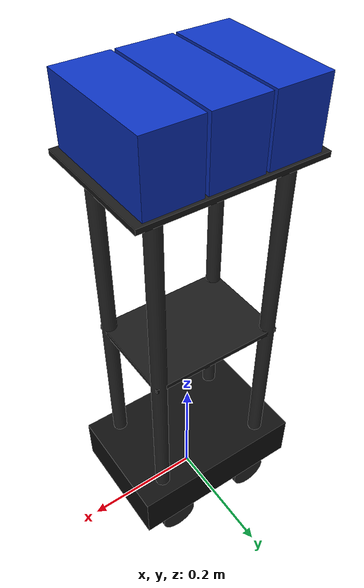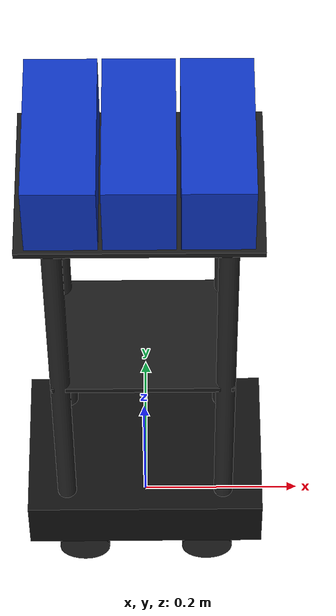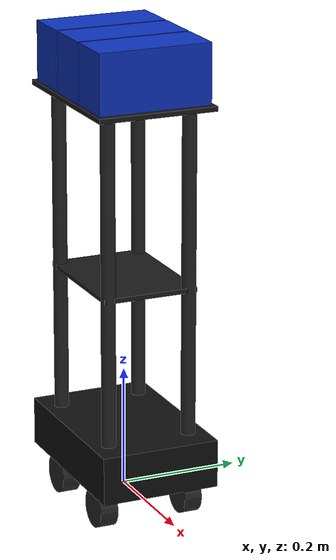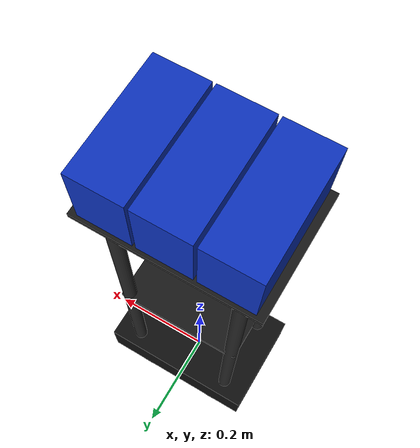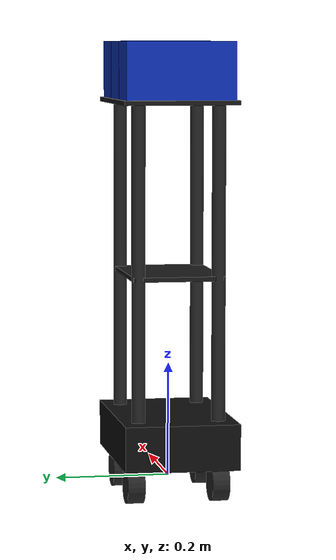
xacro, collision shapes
<?xml version="1.0"?>
<robot xmlns:xacro="http://www.ros.org/wiki/xacro" name="rosmaster_x3">

  <xacro:property name="M_PI" value="3.1415926535897931" />

  <xacro:include filename="$(find mechanum_description)/urdf/mech/rosmaster_x3_base.urdf.xacro"/>
  <xacro:include filename="$(find mechanum_description)/urdf/mech/mecanum_wheel.urdf.xacro"/>
  <xacro:include filename="$(find mechanum_description)/urdf/sensors/lidar.urdf.xacro"/>

  <xacro:rosmaster_x3_base />

  <xacro:mecanum_wheel side="front_left"  x_reflect="1"  y_reflect="1"/>
  <xacro:mecanum_wheel side="front_right" x_reflect="1"  y_reflect="-1"/>
  <xacro:mecanum_wheel side="back_left"   x_reflect="-1" y_reflect="1"/>
  <xacro:mecanum_wheel side="back_right"  x_reflect="-1" y_reflect="-1"/>

  <!-- LiDAR : à l'avant du châssis, centré, au-dessus du châssis
       z=0.15 > base_height=0.08 → lidar bien au-dessus, pas enfoncé -->
  <xacro:lidar_sensor
    parent="base_link"
    frame_id="laser_frame"
    xyz_offset="0.08 0.0 0.15"
    rpy_offset="0 0 0"
    mesh_xyz_offset="0 0 0"
    mesh_rpy_offset="${-M_PI/2} 0 0"
    topic_name="scan"
    visualize="false"/>

  <!-- Plugin joint_state_publisher Gazebo -->
  <gazebo>
    <plugin name="gazebo_ros_joint_state_publisher"
            filename="libgazebo_ros_joint_state_publisher.so">
      <update_rate>20</update_rate>
      <joint_name>front_left_wheel_joint</joint_name>
      <joint_name>front_right_wheel_joint</joint_name>
      <joint_name>back_left_wheel_joint</joint_name>
      <joint_name>back_right_wheel_joint</joint_name>
    </plugin>
  </gazebo>

  <!-- Plugin Planar Move omnidirectionnel -->
  <gazebo>
    <plugin name="planar_controller" filename="libgazebo_ros_planar_move.so">
      <ros><remapping>cmd_vel:=cmd_vel</remapping></ros>
      <update_rate>50</update_rate>
      <publish_rate>20</publish_rate>
      <publish_odom>true</publish_odom>
      <publish_odom_tf>false</publish_odom_tf>
      <odometry_frame>odom</odometry_frame>
      <robot_base_frame>base_footprint</robot_base_frame>
    </plugin>
  </gazebo>

</robot>

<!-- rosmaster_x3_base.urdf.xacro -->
<robot xmlns:xacro="http://www.ros.org/wiki/xacro">

  <!-- Roues -->
  <xacro:property name="wheel_radius"     value="0.0325" />
  <xacro:property name="wheel_width"      value="0.0304" />
  <xacro:property name="wheel_separation" value="0.169"  />
  <xacro:property name="wheel_xoff"       value="0.08"   />

  <!-- Châssis principal -->
  <xacro:property name="base_length"  value="0.300" />   <!-- X : avant/arrière -->
  <xacro:property name="base_width"   value="0.200" />   <!-- Y : gauche/droite (entre roues) -->
  <xacro:property name="base_height"  value="0.080" />   <!-- Z : hauteur châssis -->
  <xacro:property name="base_mass"    value="4.6"   />

  <!-- Mâts (4 mâts aux coins) -->
  <xacro:property name="pole_radius"  value="0.012" />
  <xacro:property name="pole_height"  value="0.55"  />   <!-- hauteur des mâts -->
  <xacro:property name="pole_mass"    value="0.12"  />
  <!-- Position des 4 mâts dans le châssis -->
  <xacro:property name="pole_x"       value="0.10"  />   <!-- avant/arrière des mâts -->
  <xacro:property name="pole_y"       value="0.07"  />   <!-- gauche/droite des mâts -->
  <xacro:property name="pole_z_center" value="${base_height + pole_height/2}" />

  <!-- Plaque intermédiaire noire -->
  <xacro:property name="mid_shelf_l"  value="0.22"  />
  <xacro:property name="mid_shelf_w"  value="0.16"  />
  <xacro:property name="mid_shelf_h"  value="0.008" />
  <xacro:property name="mid_shelf_z"  value="${base_height + pole_height * 0.45}" />

  <!-- Plateforme supérieure (base des bacs) -->
  <xacro:property name="top_shelf_l"  value="0.28"  />
  <xacro:property name="top_shelf_w"  value="0.20"  />
  <xacro:property name="top_shelf_h"  value="0.008" />
  <xacro:property name="top_shelf_z"  value="${base_height + pole_height}" />

  <!-- 3 bacs bleus -->
  <xacro:property name="bin_l"        value="0.082" />   <!-- largeur d'un bac -->
  <xacro:property name="bin_w"        value="0.19"  />
  <xacro:property name="bin_h"        value="0.10"  />
  <xacro:property name="bin_z"        value="${top_shelf_z + top_shelf_h/2 + bin_h/2}" />
  <xacro:property name="bin_mass"     value="0.15"  />

  <!-- Macros inertie -->
  <xacro:macro name="box_inertia" params="m l w h">
    <inertial>
      <mass value="${m}"/>
      <inertia ixx="${m*(w*w+h*h)/12}" ixy="0" ixz="0"
               iyy="${m*(l*l+h*h)/12}" iyz="0"
               izz="${m*(l*l+w*w)/12}"/>
    </inertial>
  </xacro:macro>

  <xacro:macro name="cyl_inertia" params="m r h">
    <inertial>
      <mass value="${m}"/>
      <inertia ixx="${m*(3*r*r+h*h)/12}" ixy="0" ixz="0"
               iyy="${m*(3*r*r+h*h)/12}" iyz="0"
               izz="${m*r*r/2}"/>
    </inertial>
  </xacro:macro>

  <!-- ══ MACRO MÂT (réutilisée 4 fois) ══ -->
  <xacro:macro name="pole" params="name px py">
    <link name="pole_${name}_link">
      <visual>
        <origin xyz="0 0 0" rpy="0 0 0"/>
        <geometry>
          <cylinder radius="${pole_radius}" length="${pole_height}"/>
        </geometry>
        <material name="mat_pole">
          <color rgba="0.15 0.15 0.15 1.0"/>
        </material>
      </visual>
      <collision>
        <geometry>
          <cylinder radius="${pole_radius}" length="${pole_height}"/>
        </geometry>
      </collision>
      <xacro:cyl_inertia m="${pole_mass}" r="${pole_radius}" h="${pole_height}"/>
    </link>
    <joint name="pole_${name}_joint" type="fixed">
      <parent link="base_link"/>
      <child  link="pole_${name}_link"/>
      <origin xyz="${px} ${py} ${pole_z_center}" rpy="0 0 0"/>
    </joint>
    <gazebo reference="pole_${name}_link">
      <material>Gazebo/DarkGray</material>
    </gazebo>
  </xacro:macro>

  <!-- ══ MACRO BAC (réutilisée 3 fois) ══ -->
  <xacro:macro name="bin" params="name bx">
    <link name="bin_${name}_link">
      <visual>
        <origin xyz="0 0 0" rpy="0 0 0"/>
        <geometry>
          <box size="${bin_l} ${bin_w} ${bin_h}"/>
        </geometry>
        <material name="mat_blue">
          <color rgba="0.05 0.20 0.75 1.0"/>
        </material>
      </visual>
      <collision>
        <geometry><box size="${bin_l} ${bin_w} ${bin_h}"/></geometry>
      </collision>
      <xacro:box_inertia m="${bin_mass}" l="${bin_l}" w="${bin_w}" h="${bin_h}"/>
    </link>
    <joint name="bin_${name}_joint" type="fixed">
      <parent link="base_link"/>
      <child  link="bin_${name}_link"/>
      <origin xyz="${bx} 0 ${bin_z}" rpy="0 0 0"/>
    </joint>
    <gazebo reference="bin_${name}_link">
      <material>Gazebo/Blue</material>
    </gazebo>
  </xacro:macro>

  <!-- ══════════════════════════════════════════════════════════
       MACRO PRINCIPALE
  ══════════════════════════════════════════════════════════ -->
  <xacro:macro name="rosmaster_x3_base">

    <!-- ── base_footprint ── -->
    <link name="base_footprint"/>
    <joint name="base_joint" type="fixed">
      <parent link="base_footprint"/>
      <child  link="base_link"/>
      <origin xyz="0 0 ${wheel_radius}" rpy="0 0 0"/>
    </joint>

    <!-- ── Châssis principal (boîte noire) ── -->
    <link name="base_link">
      <visual>
        <origin xyz="0 0 ${base_height/2}" rpy="0 0 0"/>
        <geometry>
          <box size="${base_length} ${base_width} ${base_height}"/>
        </geometry>
        <material name="mat_chassis">
          <color rgba="0.06 0.06 0.06 1.0"/>
        </material>
      </visual>
      <collision>
        <origin xyz="0 0 ${base_height/2}" rpy="0 0 0"/>
        <geometry>
          <box size="${base_length} ${base_width} ${base_height}"/>
        </geometry>
      </collision>
      <xacro:box_inertia m="${base_mass}" l="${base_length}" w="${base_width}" h="${base_height}"/>
    </link>
    <gazebo reference="base_link">
      <material>Gazebo/Black</material>
    </gazebo>

    <!-- ── 4 Mâts noirs aux coins ── -->
    <xacro:pole name="fl" px=" ${pole_x}" py=" ${pole_y}"/>
    <xacro:pole name="fr" px=" ${pole_x}" py="-${pole_y}"/>
    <xacro:pole name="rl" px="-${pole_x}" py=" ${pole_y}"/>
    <xacro:pole name="rr" px="-${pole_x}" py="-${pole_y}"/>

    <!-- ── Plaque intermédiaire noire (mi-hauteur) ── -->
    <link name="mid_shelf_link">
      <visual>
        <origin xyz="0 0 0" rpy="0 0 0"/>
        <geometry>
          <box size="${mid_shelf_l} ${mid_shelf_w} ${mid_shelf_h}"/>
        </geometry>
        <material name="mat_shelf">
          <color rgba="0.10 0.10 0.10 1.0"/>
        </material>
      </visual>
      <collision>
        <geometry><box size="${mid_shelf_l} ${mid_shelf_w} ${mid_shelf_h}"/></geometry>
      </collision>
      <xacro:box_inertia m="0.2" l="${mid_shelf_l}" w="${mid_shelf_w}" h="${mid_shelf_h}"/>
    </link>
    <joint name="mid_shelf_joint" type="fixed">
      <parent link="base_link"/>
      <child  link="mid_shelf_link"/>
      <origin xyz="0 0 ${mid_shelf_z}" rpy="0 0 0"/>
    </joint>
    <gazebo reference="mid_shelf_link">
      <material>Gazebo/DarkGray</material>
    </gazebo>

    <!-- ── Plateforme supérieure (support des bacs) ── -->
    <link name="top_shelf_link">
      <visual>
        <origin xyz="0 0 0" rpy="0 0 0"/>
        <geometry>
          <box size="${top_shelf_l} ${top_shelf_w} ${top_shelf_h}"/>
        </geometry>
        <material name="mat_shelf">
          <color rgba="0.10 0.10 0.10 1.0"/>
        </material>
      </visual>
      <collision>
        <geometry><box size="${top_shelf_l} ${top_shelf_w} ${top_shelf_h}"/></geometry>
      </collision>
      <xacro:box_inertia m="0.25" l="${top_shelf_l}" w="${top_shelf_w}" h="${top_shelf_h}"/>
    </link>
    <joint name="top_shelf_joint" type="fixed">
      <parent link="base_link"/>
      <child  link="top_shelf_link"/>
      <origin xyz="0 0 ${top_shelf_z}" rpy="0 0 0"/>
    </joint>
    <gazebo reference="top_shelf_link">
      <material>Gazebo/Black</material>
    </gazebo>

    <!-- ── 3 Bacs bleus côte à côte ── -->
    <!-- bac gauche -->
    <xacro:bin name="left"   bx="-${bin_l + 0.005}"/>
    <!-- bac centre -->
    <xacro:bin name="center" bx="0"/>
    <!-- bac droit -->
    <xacro:bin name="right"  bx=" ${bin_l + 0.005}"/>

  </xacro:macro>
</robot>

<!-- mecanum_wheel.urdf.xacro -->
<robot xmlns:xacro="http://www.ros.org/wiki/xacro">

  <xacro:property name="wheel_radius"    value="0.0325" />
  <xacro:property name="wheel_separation" value="0.169" />
  <xacro:property name="wheel_width"     value="0.0304" />
  <xacro:property name="wheel_mass"      value="0.5"    />
  <xacro:property name="wheel_xoff"      value="0.08"   />
  <xacro:property name="wheel_yoff"      value="-0.01"  />

  <xacro:macro name="mecanum_wheel" params="side x_reflect y_reflect">

    <link name="${side}_wheel_link">
      <!-- CORRECTION : cylindre géométrique simple au lieu du mesh STL rosmaster_x3
           Couleur noir foncé pour les roues mecanum -->
      <visual>
        <origin xyz="0 0 0" rpy="${pi/2} 0 0"/>
        <geometry>
          <cylinder radius="${wheel_radius}" length="${wheel_width}"/>
        </geometry>
        <material name="mat_wheel">
          <color rgba="0.15 0.15 0.15 1.0"/>
        </material>
      </visual>
      <collision>
        <origin xyz="0 0 0" rpy="${pi/2} 0 0"/>
        <geometry>
          <cylinder radius="${wheel_radius}" length="${wheel_width}"/>
        </geometry>
      </collision>
      <inertial>
        <origin xyz="0 0 0" rpy="0 0 0"/>
        <mass value="${wheel_mass}"/>
        <inertia
          ixx="${(wheel_mass/12.0)*(3*wheel_radius*wheel_radius + wheel_width*wheel_width)}"
          ixy="0" ixz="0"
          iyy="${(wheel_mass/2.0)*(wheel_radius*wheel_radius)}"
          iyz="0"
          izz="${(wheel_mass/12.0)*(3*wheel_radius*wheel_radius + wheel_width*wheel_width)}"/>
      </inertial>
    </link>

    <joint name="${side}_wheel_joint" type="continuous">
      <axis xyz="0 1 0"/>
      <parent link="base_link"/>
      <child  link="${side}_wheel_link"/>
      <origin xyz="${x_reflect*wheel_xoff} ${y_reflect*(wheel_separation/2+wheel_yoff)} ${-wheel_radius}" rpy="0 0 0"/>
    </joint>

    <!-- Friction mecanum : mu1 fort (avance), mu2 faible (dérive latérale) -->
    <gazebo reference="${side}_wheel_link">
      <collision>
        <surface>
          <friction>
            <ode>
              <mu1>0.8</mu1>
              <mu2>0.2</mu2>
              <minDepth>0.001</minDepth>
              <fdir1>
                <xacro:if value="${side == 'front_left'}">1 -1 0</xacro:if>
                <xacro:if value="${side == 'back_left'}">1 1 0</xacro:if>
                <xacro:if value="${side == 'front_right'}">1 1 0</xacro:if>
                <xacro:if value="${side == 'back_right'}">1 -1 0</xacro:if>
              </fdir1>
            </ode>
          </friction>
        </surface>
      </collision>
      <visual>
        <material>
          <ambient>0.15 0.15 0.15 1.0</ambient>
          <diffuse>0.15 0.15 0.15 1.0</diffuse>
          <specular>0.1  0.1  0.1  1.0</specular>
        </material>
      </visual>
    </gazebo>

  </xacro:macro>
</robot>

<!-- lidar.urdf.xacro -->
<robot xmlns:xacro="http://www.ros.org/wiki/xacro">
  <xacro:property name="M_PI" value="3.1415926535897931" />

  <xacro:macro name="lidar_sensor" params="parent:='base_link' frame_id:='laser_frame'
    mesh_file:='file://$(find mechanum_description)/meshes/rplidar/rplidar_s2.stl'
    xyz_offset:='0 0 0.0825' rpy_offset:='0 0 0'
    mesh_xyz_offset:='0 0 0' mesh_rpy_offset:='${-M_PI/2} 0 0'
    mesh_scale:='0.001 0.001 0.001'
    collision_xyz_offset:='0 0 0' collision_rpy_offset:='0 0 0'
    inertial_xyz_offset:='0 0 0' inertial_rpy_offset:='0 0 0'
    lidar_width:=0.077 lidar_height:=0.0398 mass:=0.185
    material_name:='rplidar_black' material_color:='0.1 0.1 0.1 1'
    gazebo_material_ambient:='0.1 0.1 0.1 1'
    gazebo_material_diffuse:='0.1 0.1 0.1 1'
    gazebo_material_specular:='0.1 0.1 0.1 1'
    update_rate:=10 ray_count:=360
    min_angle:='-3.14159' max_angle:='3.14159'
    min_range:='0.12' max_range:='12.0' range_resolution:='0.01'
    topic_name:='scan' visualize:=false enable_collision:=false">

    <xacro:property name="radius"   value="${lidar_width/2}" />
    <xacro:property name="ixx_iyy" value="${(mass/12) * (3 * radius * radius + lidar_height * lidar_height)}" />
    <xacro:property name="izz"     value="${(mass/2)  * (radius * radius)}" />

    <link name="${frame_id}">
      <visual>
        <origin xyz="${mesh_xyz_offset}" rpy="${mesh_rpy_offset}"/>
        <geometry>
          <mesh filename="${mesh_file}" scale="${mesh_scale}"/>
        </geometry>
        <material name="${material_name}">
          <color rgba="${material_color}"/>
        </material>
      </visual>

      <xacro:if value="${enable_collision}">
        <collision>
          <origin xyz="${collision_xyz_offset}" rpy="${collision_rpy_offset}"/>
          <geometry>
            <cylinder radius="${lidar_width/2}" length="${lidar_height}"/>
          </geometry>
        </collision>
      </xacro:if>

      <inertial>
        <mass value="${mass}" />
        <origin xyz="${inertial_xyz_offset}" rpy="${inertial_rpy_offset}"/>
        <inertia ixx="${ixx_iyy}" ixy="0.0" ixz="0.0"
                 iyy="${ixx_iyy}" iyz="0.0" izz="${izz}" />
      </inertial>
    </link>

    <joint name="${frame_id}_joint" type="fixed">
      <parent link="${parent}"/>
      <child  link="${frame_id}" />
      <origin xyz="${xyz_offset}" rpy="${rpy_offset}"/>
    </joint>

    <gazebo reference="${frame_id}">
      <material>
        <ambient>${gazebo_material_ambient}</ambient>
        <diffuse>${gazebo_material_diffuse}</diffuse>
        <specular>${gazebo_material_specular}</specular>
      </material>

      <sensor name="lidar_sensor" type="ray">
        <pose>0 0 0 0 0 0</pose>
        <visualize>${visualize}</visualize>
        <update_rate>${update_rate}</update_rate>
        <ray>
          <scan>
            <horizontal>
              <samples>${ray_count}</samples>
              <resolution>1</resolution>
              <min_angle>${min_angle}</min_angle>
              <max_angle>${max_angle}</max_angle>
            </horizontal>
          </scan>
          <range>
            <min>${min_range}</min>
            <max>${max_range}</max>
            <resolution>${range_resolution}</resolution>
          </range>
          <noise>
            <type>gaussian</type>
            <mean>0.0</mean>
            <stddev>0.01</stddev>
          </noise>
        </ray>
        <plugin name="lidar_ros_controller" filename="libgazebo_ros_ray_sensor.so">
          <ros>
            <remapping>~/out:=${topic_name}</remapping>
          </ros>
          <output_type>sensor_msgs/LaserScan</output_type>
          <frame_name>${frame_id}</frame_name>
        </plugin>
      </sensor>
    </gazebo>
  </xacro:macro>
</robot>
